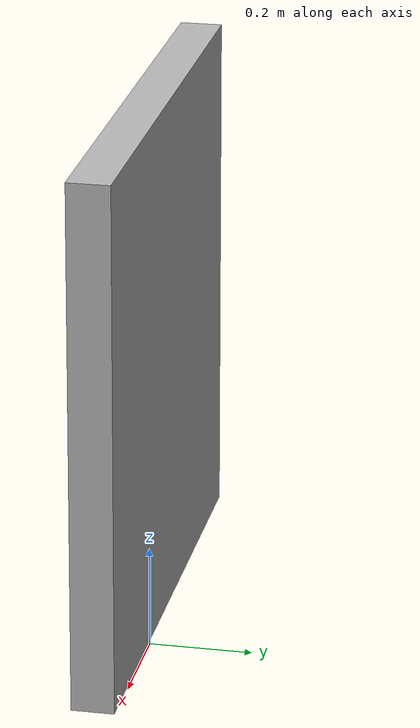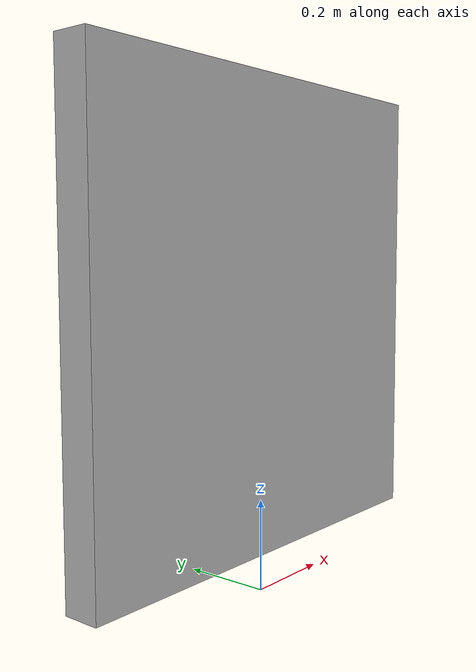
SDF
<?xml version='1.0'?>
<sdf version='1.6'>
  <model name="Checkerboard">
      <pose>0 0 0.6 0 0 0</pose>
      <static>true</static>
      <link name="body">
        <visual name="visual">
			<pose>0 0 0 0 0 0</pose>
			  <geometry>
				<mesh><uri>model://chess_plane/meshes/chess_plane.dae</uri></mesh>
			  </geometry>
		</visual>
		  <collision name="collision">
			<pose>0 0 0  0 0 0</pose>
			  <geometry>
				<mesh><uri>model://chess_plane/meshes/chess_plane.stl</uri></mesh>
			  </geometry>
		  </collision>
      </link>
    </model>
</sdf>
